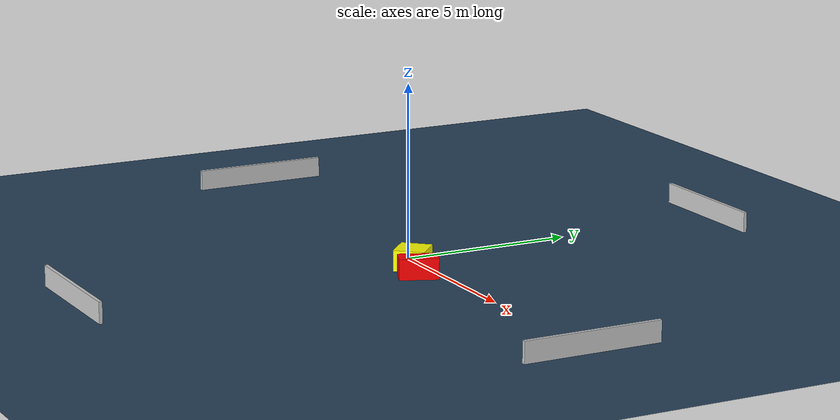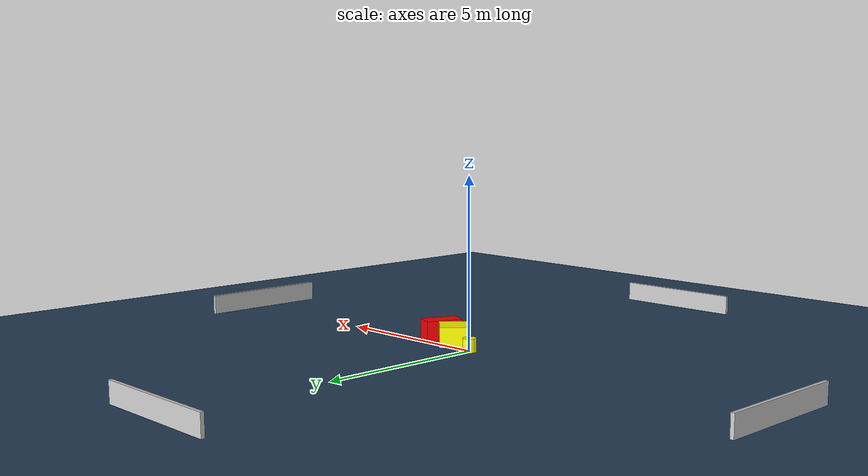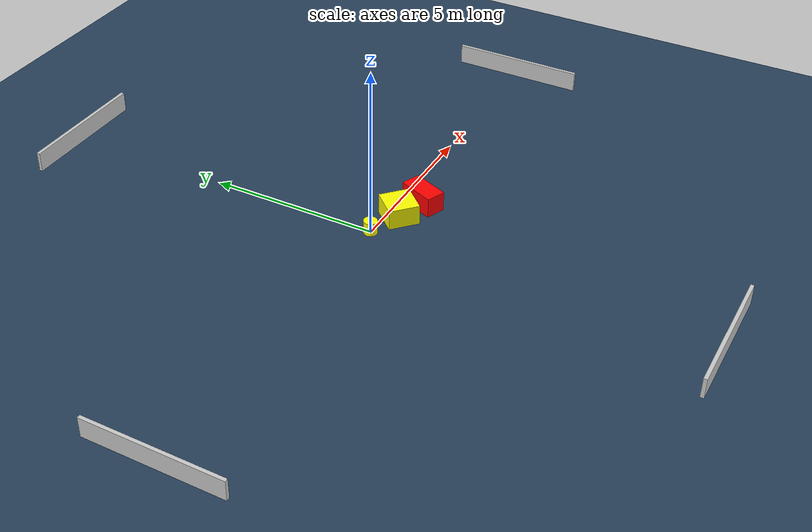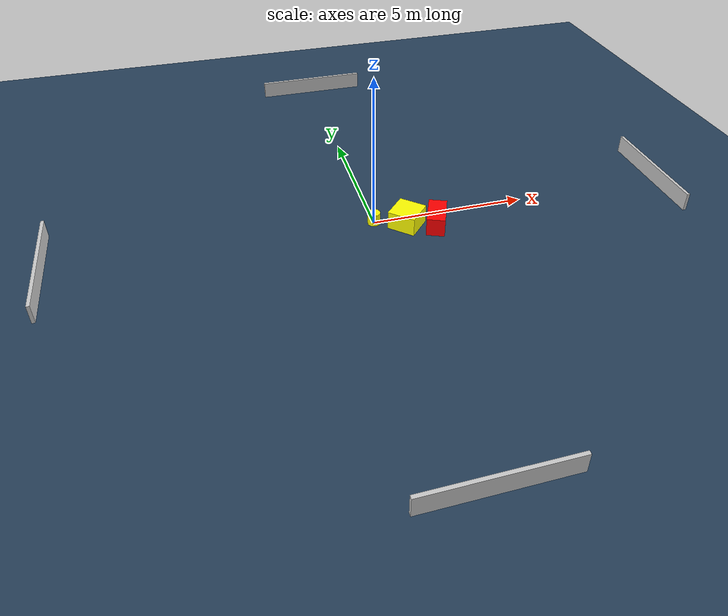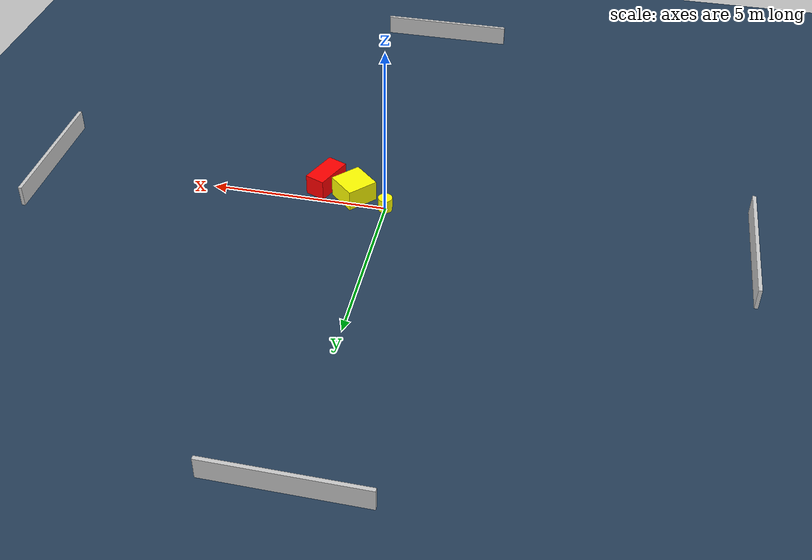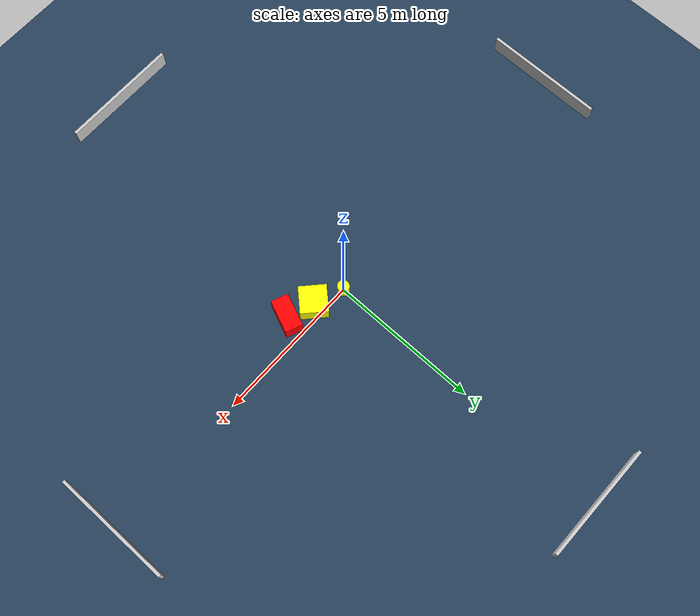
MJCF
<?xml version="1.0" ?>
<mujoco model="generated_environment">
  <option timestep="0.01" integrator="RK4" cone="elliptic"/>
  <default>
    <geom density="1"/>
  </default>
  <asset>
    <texture builtin="gradient" height="3072" name="skybox" rgb1="0.3 0.5 0.7" rgb2="0 0 0" type="skybox" width="512"/>
    <texture builtin="checker" height="300" name="groundplane" rgb1="0.2 0.3 0.4" rgb2="0.1 0.2 0.3" type="2d" width="300"/>
    <material name="groundplane" reflectance="0.2" texrepeat="5 5" texture="groundplane"/>
  </asset>
  <worldbody>
    <light dir="0 0 -1" directional="true" pos="0 0 1.5"/>
    <geom condim="3" friction="0.5 0.005 0.001" material="groundplane" name="floor" pos="0 0 0" size="0 0 0.05" type="plane"/>
    <body name="walls">
      <geom name="wall_1" condim="4" pos="-10.0 0.0 0.3" rgba="0.800000011920929 0.800000011920929 0.800000011920929 1.0" size="0.05 2.0 0.3" type="box"/>
      <geom name="wall_2" condim="4" pos="10.0 0.0 0.3" rgba="0.800000011920929 0.800000011920929 0.800000011920929 1.0" size="0.05 2.0 0.3" type="box"/>
      <geom name="wall_3" condim="4" pos="0.0 -10.0 0.3" rgba="0.800000011920929 0.800000011920929 0.800000011920929 1.0" size="2.0 0.05 0.3" type="box"/>
      <geom name="wall_4" condim="4" pos="0.0 10.0 0.3" rgba="0.800000011920929 0.800000011920929 0.800000011920929 1.0" size="2.0 0.05 0.3" type="box"/>
    </body>
    <body name="robot">
      <joint name="joint_x" type="slide" pos="0 0 0" axis="1 0 0"/>
      <joint name="joint_y" type="slide" pos="0 0 0" axis="0 1 0"/>
      <geom name="robot" type="cylinder" pos="0.0 0.0 0.2" size="0.2 0.2 0.0" mass="5.0" friction="1.0 0.005 0.0001" condim="4" rgba="1.0 1.0 0.0 1.0"/>
    </body>
    <body name="obstacle_1_movable">
      <geom name="obstacle_1_movable" condim="4" pos="0.9838571160355744 -0.3656991051260717 0.3" euler="0 0 137.2050182147784" friction="0.0 0.005 0.001" rgba="1.0 1.0 0.0 1.0" size="0.4517436831665508 0.44957745917024655 0.3" type="box" mass="0.1"/>
      <joint type="free"/>
    </body>
    <body name="obstacle_2_static">
      <geom name="obstacle_2_static" condim="4" pos="1.8689633843742788 -0.6645292167266194 0.3" euler="0 0 247.44759185445582" friction="0.0 0.005 0.001" rgba="1.0 0.0 0.0 1.0" size="0.5529306699195272 0.29072916083374134 0.3" type="box"/>
    </body>
  </worldbody>
  <actuator>
    <motor name="actuator_x" joint="joint_x" gear="1" ctrlrange="-1 1"/>
    <motor name="actuator_y" joint="joint_y" gear="1" ctrlrange="-1 1"/>
  </actuator>
</mujoco>
